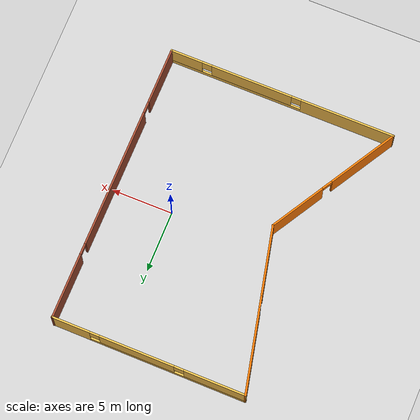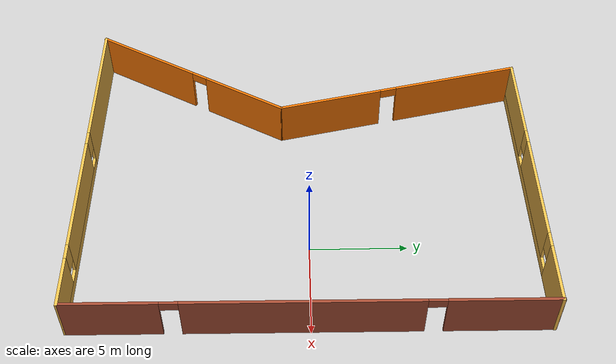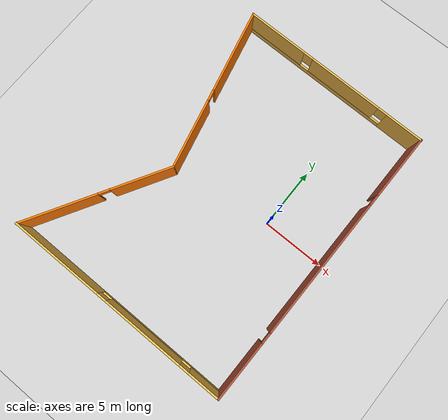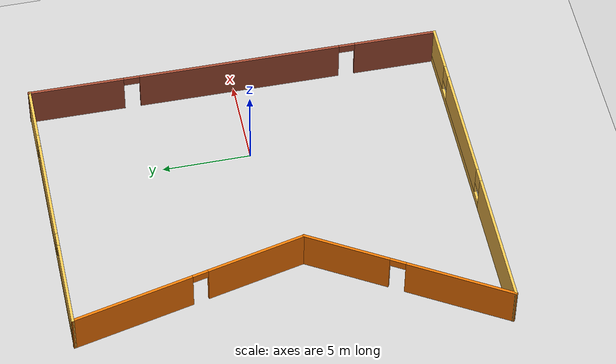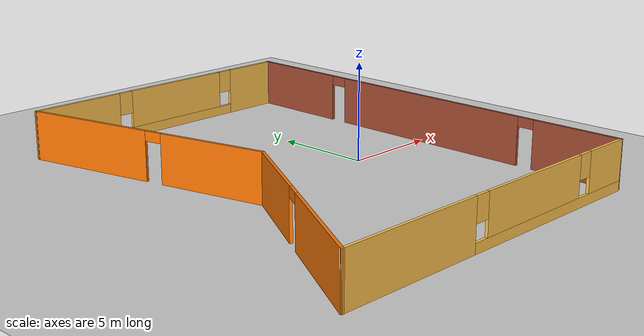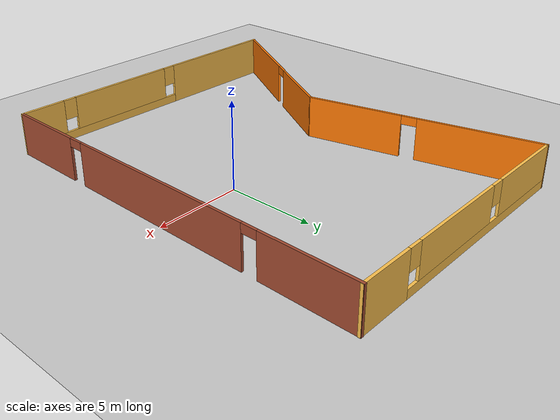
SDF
<sdf version="1.6">
 <world name="default">
  <model name="ground_plane">
   <static>1</static>
   <link name="link">
    <collision name="collision">
     <geometry><plane><normal>0 0 1</normal><size>100 100</size></plane></geometry>
     <surface>
      <contact><collide_bitmask>65535</collide_bitmask></contact>
      <friction><ode><mu>100</mu><mu2>50</mu2></ode></friction>
     </surface>
    </collision>
    <visual name="visual">
     <cast_shadows>0</cast_shadows>
     <geometry><plane><normal>0 0 1</normal><size>100 100</size></plane></geometry>
     <material>
      <script><uri>file://media/materials/scripts/gazebo.material</uri><name>Gazebo/Grey</name></script>
     </material>
    </visual>
   </link>
  </model>
  <model name="area98">
   <pose>-4.4596 -0.002632 0 0 0 -1.57735</pose>
   <link name="Wall_10">
    <pose>11.6613 0.003272 0 0 -0 1.57265</pose>
    <visual name="Wall_10_Visual_0">
     <pose>-5.5195 0 1.25 0 -0 0</pose>
     <geometry><box><size>7.78929 0.15 2.5</size></box></geometry>
     <material>
      <script><uri>file://media/materials/scripts/gazebo.material</uri><name>Gazebo/Grey</name></script>
      <ambient>1 0.764706 0.305882 1</ambient>
     </material>
     <meta><layer>0</layer></meta>
    </visual>
    <collision name="Wall_10_Collision_0">
     <geometry><box><size>7.78929 0.15 2.5</size></box></geometry>
     <pose>-5.5195 0 1.25 0 -0 0</pose>
    </collision>
    <visual name="Wall_10_Visual_1">
     <pose>3.89465 0 0.25 0 -0 0</pose>
     <geometry><box><size>11.039 0.15 0.5</size></box></geometry>
     <material>
      <script><uri>file://media/materials/scripts/gazebo.material</uri><name>Gazebo/Grey</name></script>
      <ambient>1 0.764706 0.305882 1</ambient>
     </material>
     <meta><layer>0</layer></meta>
    </visual>
    <collision name="Wall_10_Collision_1">
     <geometry><box><size>11.039 0.15 0.5</size></box></geometry>
     <pose>3.89465 0 0.25 0 -0 0</pose>
    </collision>
    <visual name="Wall_10_Visual_2">
     <pose>2.54713 0 1.5 0 -0 0</pose>
     <geometry><box><size>6.74398 0.15 2</size></box></geometry>
     <material>
      <script><uri>file://media/materials/scripts/gazebo.material</uri><name>Gazebo/Grey</name></script>
      <ambient>1 0.764706 0.305882 1</ambient>
     </material>
     <meta><layer>0</layer></meta>
    </visual>
    <collision name="Wall_10_Collision_2">
     <geometry><box><size>6.74398 0.15 2</size></box></geometry>
     <pose>2.54713 0 1.5 0 -0 0</pose>
    </collision>
    <visual name="Wall_10_Visual_3">
     <pose>8.06663 0 1.5 0 -0 0</pose>
     <geometry><box><size>2.69503 0.15 2</size></box></geometry>
     <material>
      <script><uri>file://media/materials/scripts/gazebo.material</uri><name>Gazebo/Grey</name></script>
      <ambient>1 0.764706 0.305882 1</ambient>
     </material>
     <meta><layer>0</layer></meta>
    </visual>
    <collision name="Wall_10_Collision_3">
     <geometry><box><size>2.69503 0.15 2</size></box></geometry>
     <pose>8.06663 0 1.5 0 -0 0</pose>
    </collision>
    <visual name="Wall_10_Visual_4">
     <pose>-1.22486 0 1.9 0 -0 0</pose>
     <geometry><box><size>0.8 0.15 1.2</size></box></geometry>
     <material>
      <script><uri>file://media/materials/scripts/gazebo.material</uri><name>Gazebo/Grey</name></script>
      <ambient>1 0.764706 0.305882 1</ambient>
     </material>
     <meta><layer>0</layer></meta>
    </visual>
    <collision name="Wall_10_Collision_4">
     <geometry><box><size>0.8 0.15 1.2</size></box></geometry>
     <pose>-1.22486 0 1.9 0 -0 0</pose>
    </collision>
    <visual name="Wall_10_Visual_5">
     <pose>6.31912 0 1.9 0 -0 0</pose>
     <geometry><box><size>0.8 0.15 1.2</size></box></geometry>
     <material>
      <script><uri>file://media/materials/scripts/gazebo.material</uri><name>Gazebo/Grey</name></script>
      <ambient>1 0.764706 0.305882 1</ambient>
     </material>
     <meta><layer>0</layer></meta>
    </visual>
    <collision name="Wall_10_Collision_5">
     <geometry><box><size>0.8 0.15 1.2</size></box></geometry>
     <pose>6.31912 0 1.9 0 -0 0</pose>
    </collision>
   </link>
   <link name="Wall_11">
    <pose>-0.031073 9.34241 0 0 -0 3.14159</pose>
    <visual name="Wall_11_Visual_0">
     <pose>-9.37286 0 1.25 0 -0 0</pose>
     <geometry><box><size>4.75428 0.15 2.5</size></box></geometry>
     <material>
      <script><uri>file://media/materials/scripts/gazebo.material</uri><name>Gazebo/Bricks</name></script>
      <ambient>1 0.764706 0.305882 1</ambient>
     </material>
     <meta><layer>0</layer></meta>
    </visual>
    <collision name="Wall_11_Collision_0">
     <geometry><box><size>4.75428 0.15 2.5</size></box></geometry>
     <pose>-9.37286 0 1.25 0 -0 0</pose>
    </collision>
    <visual name="Wall_11_Visual_1">
     <pose>-0.340549 0 1.25 0 -0 0</pose>
     <geometry><box><size>11.5103 0.15 2.5</size></box></geometry>
     <material>
      <script><uri>file://media/materials/scripts/gazebo.material</uri><name>Gazebo/Bricks</name></script>
      <ambient>1 0.764706 0.305882 1</ambient>
     </material>
     <meta><layer>0</layer></meta>
    </visual>
    <collision name="Wall_11_Collision_1">
     <geometry><box><size>11.5103 0.15 2.5</size></box></geometry>
     <pose>-0.340549 0 1.25 0 -0 0</pose>
    </collision>
    <visual name="Wall_11_Visual_2">
     <pose>9.03231 0 1.25 0 -0 0</pose>
     <geometry><box><size>5.43538 0.15 2.5</size></box></geometry>
     <material>
      <script><uri>file://media/materials/scripts/gazebo.material</uri><name>Gazebo/Bricks</name></script>
      <ambient>1 0.764706 0.305882 1</ambient>
     </material>
     <meta><layer>0</layer></meta>
    </visual>
    <collision name="Wall_11_Collision_2">
     <geometry><box><size>5.43538 0.15 2.5</size></box></geometry>
     <pose>9.03231 0 1.25 0 -0 0</pose>
    </collision>
    <visual name="Wall_11_Visual_3">
     <pose>-6.54572 0 2.25 0 -0 0</pose>
     <geometry><box><size>0.9 0.15 0.5</size></box></geometry>
     <material>
      <script><uri>file://media/materials/scripts/gazebo.material</uri><name>Gazebo/Bricks</name></script>
      <ambient>1 0.764706 0.305882 1</ambient>
     </material>
     <meta><layer>0</layer></meta>
    </visual>
    <collision name="Wall_11_Collision_3">
     <geometry><box><size>0.9 0.15 0.5</size></box></geometry>
     <pose>-6.54572 0 2.25 0 -0 0</pose>
    </collision>
    <visual name="Wall_11_Visual_4">
     <pose>5.86462 0 2.25 0 -0 0</pose>
     <geometry><box><size>0.9 0.15 0.5</size></box></geometry>
     <material>
      <script><uri>file://media/materials/scripts/gazebo.material</uri><name>Gazebo/Bricks</name></script>
      <ambient>1 0.764706 0.305882 1</ambient>
     </material>
     <meta><layer>0</layer></meta>
    </visual>
    <collision name="Wall_11_Collision_4">
     <geometry><box><size>0.9 0.15 0.5</size></box></geometry>
     <pose>5.86462 0 2.25 0 -0 0</pose>
    </collision>
   </link>
   <link name="Wall_7">
    <pose>-11.6837 1.43831 0 0 0 -1.5708</pose>
    <visual name="Wall_7_Visual_0">
     <pose>-6.41371 0 1.25 0 -0 0</pose>
     <geometry><box><size>3.17258 0.15 2.5</size></box></geometry>
     <material>
      <script><uri>file://media/materials/scripts/gazebo.material</uri><name>Gazebo/Grey</name></script>
      <ambient>1 0.764706 0.305882 1</ambient>
     </material>
     <meta><layer>0</layer></meta>
    </visual>
    <collision name="Wall_7_Collision_0">
     <geometry><box><size>3.17258 0.15 2.5</size></box></geometry>
     <pose>-6.41371 0 1.25 0 -0 0</pose>
    </collision>
    <visual name="Wall_7_Visual_1">
     <pose>1.58629 0 0.25 0 -0 0</pose>
     <geometry><box><size>12.8274 0.15 0.5</size></box></geometry>
     <material>
      <script><uri>file://media/materials/scripts/gazebo.material</uri><name>Gazebo/Grey</name></script>
      <ambient>1 0.764706 0.305882 1</ambient>
     </material>
     <meta><layer>0</layer></meta>
    </visual>
    <collision name="Wall_7_Collision_1">
     <geometry><box><size>12.8274 0.15 0.5</size></box></geometry>
     <pose>1.58629 0 0.25 0 -0 0</pose>
    </collision>
    <visual name="Wall_7_Visual_2">
     <pose>-0.959825 0 1.5 0 -0 0</pose>
     <geometry><box><size>6.13519 0.15 2</size></box></geometry>
     <material>
      <script><uri>file://media/materials/scripts/gazebo.material</uri><name>Gazebo/Grey</name></script>
      <ambient>1 0.764706 0.305882 1</ambient>
     </material>
     <meta><layer>0</layer></meta>
    </visual>
    <collision name="Wall_7_Collision_2">
     <geometry><box><size>6.13519 0.15 2</size></box></geometry>
     <pose>-0.959825 0 1.5 0 -0 0</pose>
    </collision>
    <visual name="Wall_7_Visual_3">
     <pose>5.45388 0 1.5 0 -0 0</pose>
     <geometry><box><size>5.09223 0.15 2</size></box></geometry>
     <material>
      <script><uri>file://media/materials/scripts/gazebo.material</uri><name>Gazebo/Grey</name></script>
      <ambient>1 0.764706 0.305882 1</ambient>
     </material>
     <meta><layer>0</layer></meta>
    </visual>
    <collision name="Wall_7_Collision_3">
     <geometry><box><size>5.09223 0.15 2</size></box></geometry>
     <pose>5.45388 0 1.5 0 -0 0</pose>
    </collision>
    <visual name="Wall_7_Visual_4">
     <pose>-4.42742 0 1.9 0 -0 0</pose>
     <geometry><box><size>0.8 0.15 1.2</size></box></geometry>
     <material>
      <script><uri>file://media/materials/scripts/gazebo.material</uri><name>Gazebo/Grey</name></script>
      <ambient>1 0.764706 0.305882 1</ambient>
     </material>
     <meta><layer>0</layer></meta>
    </visual>
    <collision name="Wall_7_Collision_4">
     <geometry><box><size>0.8 0.15 1.2</size></box></geometry>
     <pose>-4.42742 0 1.9 0 -0 0</pose>
    </collision>
    <visual name="Wall_7_Visual_5">
     <pose>2.50777 0 1.9 0 -0 0</pose>
     <geometry><box><size>0.8 0.15 1.2</size></box></geometry>
     <material>
      <script><uri>file://media/materials/scripts/gazebo.material</uri><name>Gazebo/Grey</name></script>
      <ambient>1 0.764706 0.305882 1</ambient>
     </material>
     <meta><layer>0</layer></meta>
    </visual>
    <collision name="Wall_7_Collision_5">
     <geometry><box><size>0.8 0.15 1.2</size></box></geometry>
     <pose>2.50777 0 1.9 0 -0 0</pose>
    </collision>
   </link>
   <link name="Wall_8">
    <pose>-5.15395 -4.94877 0 0 -0 0.231309</pose>
    <visual name="Wall_8_Visual_0">
     <pose>-3.3009 0 1.25 0 -0 0</pose>
     <geometry><box><size>6.96496 0.15 2.5</size></box></geometry>
     <material>
      <script><uri>file://media/materials/scripts/gazebo.material</uri><name>Gazebo/Grey</name></script>
      <ambient>0.996078 0.47451 0.0196078 1</ambient>
     </material>
     <meta><layer>0</layer></meta>
    </visual>
    <collision name="Wall_8_Collision_0">
     <geometry><box><size>6.96496 0.15 2.5</size></box></geometry>
     <pose>-3.3009 0 1.25 0 -0 0</pose>
    </collision>
    <visual name="Wall_8_Visual_1">
     <pose>3.93248 0 1.25 0 -0 0</pose>
     <geometry><box><size>5.70181 0.15 2.5</size></box></geometry>
     <material>
      <script><uri>file://media/materials/scripts/gazebo.material</uri><name>Gazebo/Grey</name></script>
      <ambient>0.996078 0.47451 0.0196078 1</ambient>
     </material>
     <meta><layer>0</layer></meta>
    </visual>
    <collision name="Wall_8_Collision_1">
     <geometry><box><size>5.70181 0.15 2.5</size></box></geometry>
     <pose>3.93248 0 1.25 0 -0 0</pose>
    </collision>
    <visual name="Wall_8_Visual_2">
     <pose>0.631573 0 2.25 0 -0 0</pose>
     <geometry><box><size>0.9 0.15 0.5</size></box></geometry>
     <material>
      <script><uri>file://media/materials/scripts/gazebo.material</uri><name>Gazebo/Grey</name></script>
      <ambient>0.996078 0.47451 0.0196078 1</ambient>
     </material>
     <meta><layer>0</layer></meta>
    </visual>
    <collision name="Wall_8_Collision_2">
     <geometry><box><size>0.9 0.15 0.5</size></box></geometry>
     <pose>0.631573 0 2.25 0 -0 0</pose>
    </collision>
   </link>
   <link name="Wall_9">
    <pose>6.54742 -6.37336 0 0 0 -0.523599</pose>
    <visual name="Wall_9_Visual_0">
     <pose>-3.53843 0 1.25 0 -0 0</pose>
     <geometry><box><size>4.92314 0.15 2.5</size></box></geometry>
     <material>
      <script><uri>file://media/materials/scripts/gazebo.material</uri><name>Gazebo/Grey</name></script>
      <ambient>0.996078 0.47451 0.0196078 1</ambient>
     </material>
     <meta><layer>0</layer></meta>
    </visual>
    <collision name="Wall_9_Collision_0">
     <geometry><box><size>4.92314 0.15 2.5</size></box></geometry>
     <pose>-3.53843 0 1.25 0 -0 0</pose>
    </collision>
    <visual name="Wall_9_Visual_1">
     <pose>2.91157 0 1.25 0 -0 0</pose>
     <geometry><box><size>6.17686 0.15 2.5</size></box></geometry>
     <material>
      <script><uri>file://media/materials/scripts/gazebo.material</uri><name>Gazebo/Grey</name></script>
      <ambient>0.996078 0.47451 0.0196078 1</ambient>
     </material>
     <meta><layer>0</layer></meta>
    </visual>
    <collision name="Wall_9_Collision_1">
     <geometry><box><size>6.17686 0.15 2.5</size></box></geometry>
     <pose>2.91157 0 1.25 0 -0 0</pose>
    </collision>
    <visual name="Wall_9_Visual_2">
     <pose>-0.626862 0 2.25 0 -0 0</pose>
     <geometry><box><size>0.9 0.15 0.5</size></box></geometry>
     <material>
      <script><uri>file://media/materials/scripts/gazebo.material</uri><name>Gazebo/Grey</name></script>
      <ambient>0.996078 0.47451 0.0196078 1</ambient>
     </material>
     <meta><layer>0</layer></meta>
    </visual>
    <collision name="Wall_9_Collision_2">
     <geometry><box><size>0.9 0.15 0.5</size></box></geometry>
     <pose>-0.626862 0 2.25 0 -0 0</pose>
    </collision>
   </link>
   <static>1</static>
  </model>
 </world>
</sdf>
